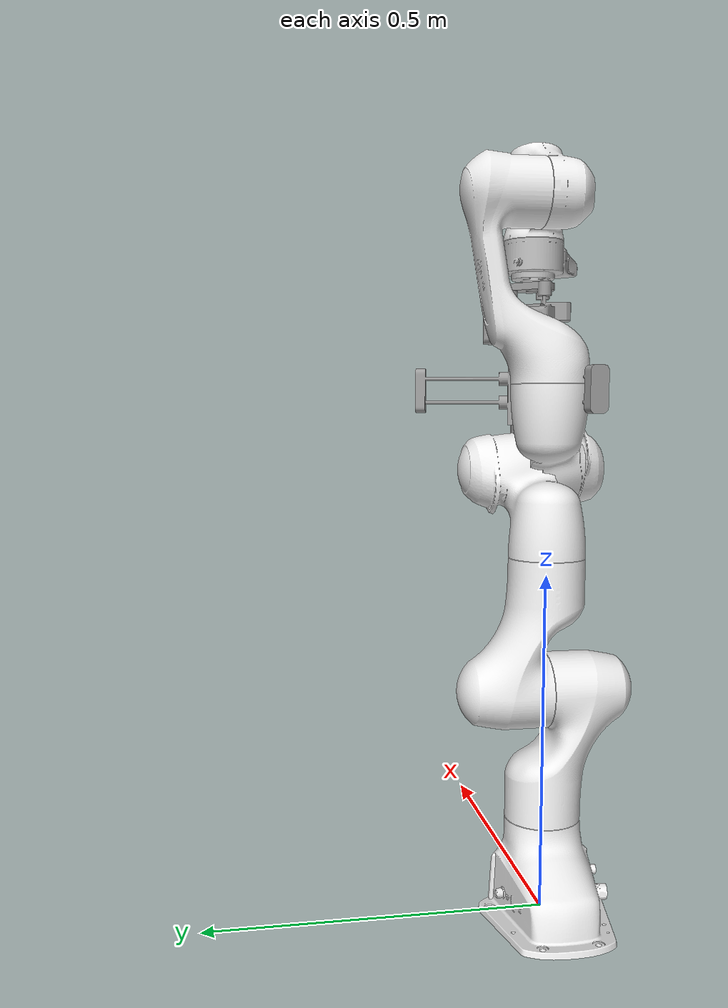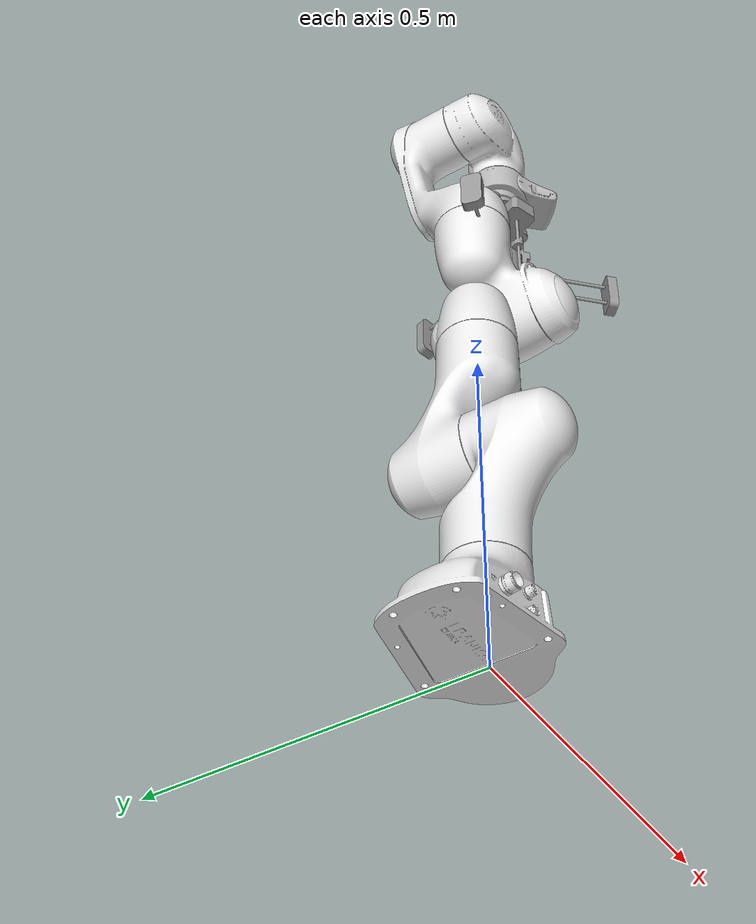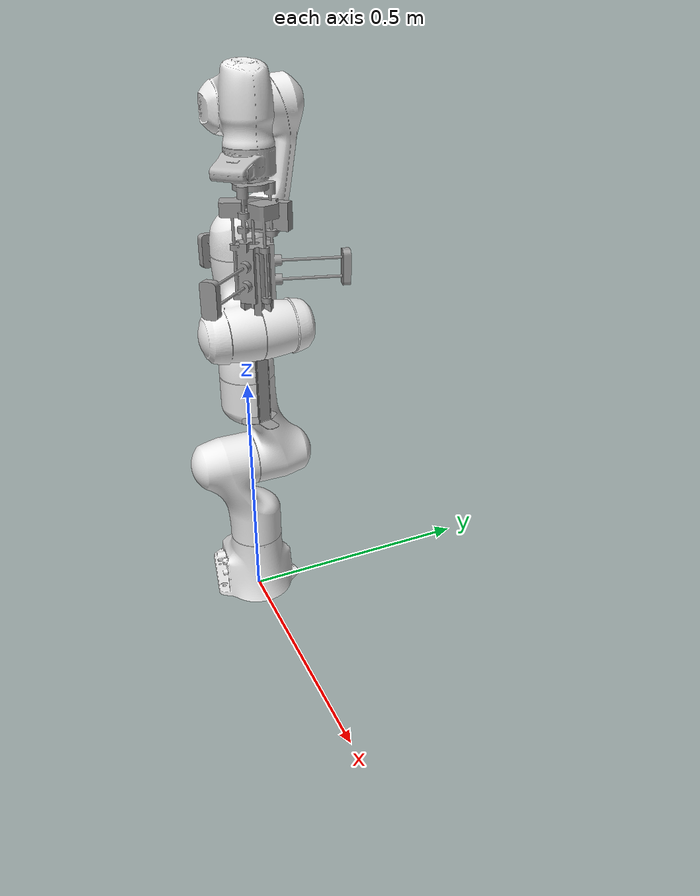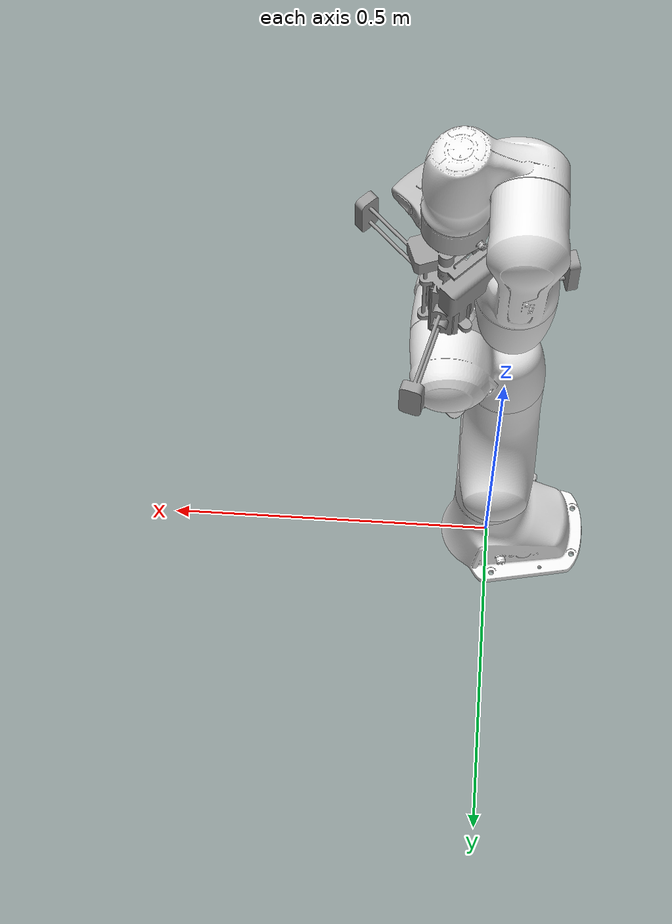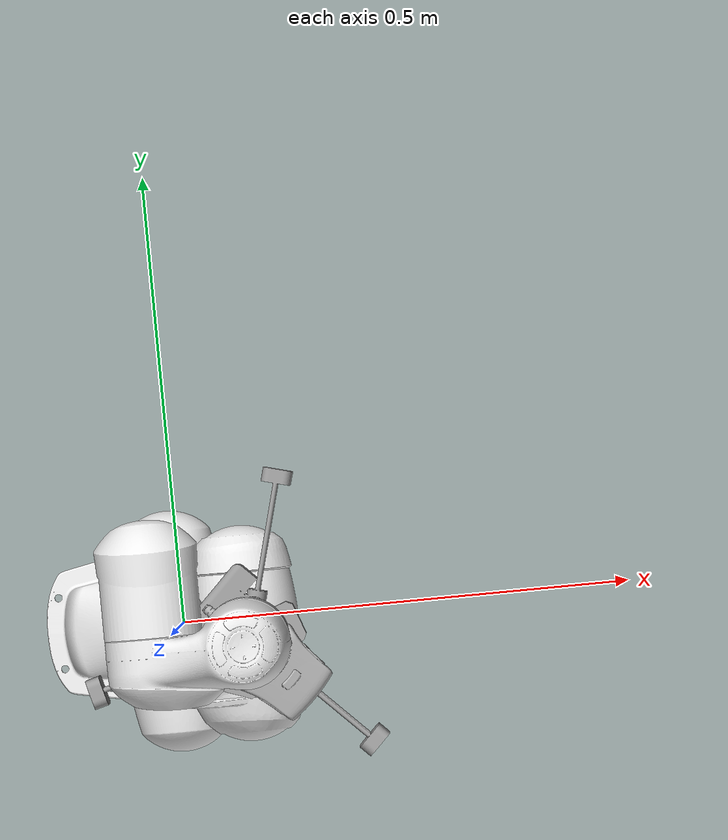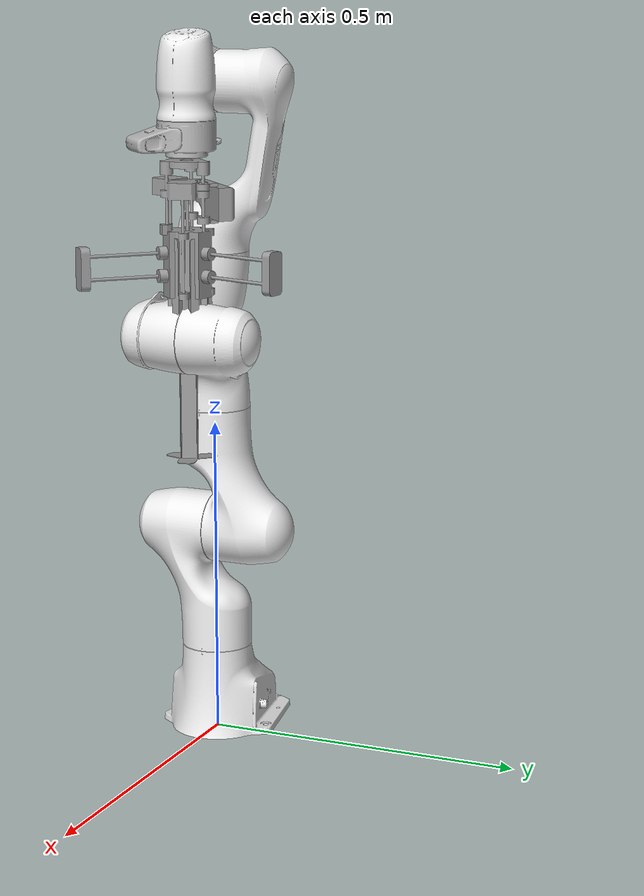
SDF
<sdf version='1.7'>
  <model name='panda_and_gripper'>
    <joint name='world_to_base' type='fixed'>
      <pose relative_to='__model__'>0 0 0 0 -0 0</pose>
      <parent>world</parent>
      <child>panda_link0</child>
    </joint>
    <link name='panda_link0'>
      <pose relative_to='world_to_base'>0 0 0 0 -0 0</pose>
      <inertial>
        <pose>0 0 0 0 -0 0</pose>
        <mass>3.06</mass>
        <inertia>
          <ixx>0.3</ixx>
          <ixy>0</ixy>
          <ixz>0</ixz>
          <iyy>0.3</iyy>
          <iyz>0</iyz>
          <izz>0.3</izz>
        </inertia>
      </inertial>
      <collision name='panda_link0_collision'>
        <pose>0 0 0 0 -0 0</pose>
        <geometry>
          <mesh>
            <scale>1 1 1</scale>
            <uri>model://gripper_description/meshes_panda/panda collision link0.stl</uri>
          </mesh>
        </geometry>
        <surface>
          <contact>
            <ode/>
          </contact>
          <friction>
            <ode>
              <mu>0.2</mu>
              <mu2>0.2</mu2>
            </ode>
          </friction>
        </surface>
      </collision>
      <visual name='panda_link0_visual'>
        <pose>0 0 0 0 -0 0</pose>
        <geometry>
          <mesh>
            <scale>1 1 1</scale>
            <uri>model://gripper_description/meshes_panda/panda visual link0.stl</uri>
          </mesh>
        </geometry>
        <material>
          <script>
            <name>Gazebo/White</name>
            <uri>file://media/materials/scripts/gazebo.material</uri>
          </script>
        </material>
      </visual>
    </link>
    <joint name='panda_joint1' type='revolute'>
      <pose relative_to='panda_link0'>0 0 0.333 0 -0 0</pose>
      <parent>panda_link0</parent>
      <child>panda_link1</child>
      <axis>
        <xyz>0 0 1</xyz>
        <limit>
          <lower>-2.8973</lower>
          <upper>2.8973</upper>
          <effort>87</effort>
          <velocity>2.175</velocity>
        </limit>
        <dynamics>
          <damping>1</damping>
          <friction>0.1</friction>
          <spring_reference>0</spring_reference>
          <spring_stiffness>0</spring_stiffness>
        </dynamics>
      </axis>
    </joint>
    <link name='panda_link1'>
      <pose relative_to='panda_joint1'>0 0 0 0 -0 0</pose>
      <inertial>
        <pose>0 0 0 0 -0 0</pose>
        <mass>2.34</mass>
        <inertia>
          <ixx>0.70337</ixx>
          <ixy>-0.000139</ixy>
          <ixz>0.006772</ixz>
          <iyy>0.70661</iyy>
          <iyz>0.019169</iyz>
          <izz>0.009117</izz>
        </inertia>
      </inertial>
      <collision name='panda_link1_collision'>
        <pose>0 0 0 0 -0 0</pose>
        <geometry>
          <mesh>
            <scale>1 1 1</scale>
            <uri>model://gripper_description/meshes_panda/panda collision link1.stl</uri>
          </mesh>
        </geometry>
        <surface>
          <contact>
            <ode/>
          </contact>
          <friction>
            <ode>
              <mu>0.2</mu>
              <mu2>0.2</mu2>
            </ode>
          </friction>
        </surface>
      </collision>
      <visual name='panda_link1_visual'>
        <pose>0 0 0 0 -0 0</pose>
        <geometry>
          <mesh>
            <scale>1 1 1</scale>
            <uri>model://gripper_description/meshes_panda/panda visual link1.stl</uri>
          </mesh>
        </geometry>
        <material>
          <script>
            <name>Gazebo/White</name>
            <uri>file://media/materials/scripts/gazebo.material</uri>
          </script>
        </material>
      </visual>
    </link>
    <joint name='panda_joint2' type='revolute'>
      <pose relative_to='panda_link1'>0 0 0 -1.5708 0 0</pose>
      <parent>panda_link1</parent>
      <child>panda_link2</child>
      <axis>
        <xyz>0 0 1</xyz>
        <limit>
          <lower>-1.7628</lower>
          <upper>1.7628</upper>
          <effort>87</effort>
          <velocity>2.175</velocity>
        </limit>
        <dynamics>
          <damping>1</damping>
          <friction>0.1</friction>
          <spring_reference>0</spring_reference>
          <spring_stiffness>0</spring_stiffness>
        </dynamics>
      </axis>
    </joint>
    <link name='panda_link2'>
      <pose relative_to='panda_joint2'>0 0 0 0 -0 0</pose>
      <inertial>
        <pose>0 0 0 0 -0 0</pose>
        <mass>2.36</mass>
        <inertia>
          <ixx>0.007962</ixx>
          <ixy>-0.003925</ixy>
          <ixz>0.010254</ixz>
          <iyy>0.02811</iyy>
          <iyz>0.000704</iyz>
          <izz>0.025995</izz>
        </inertia>
      </inertial>
      <collision name='panda_link2_collision'>
        <pose>0 0 0 0 -0 0</pose>
        <geometry>
          <mesh>
            <scale>1 1 1</scale>
            <uri>model://gripper_description/meshes_panda/panda collision link2.stl</uri>
          </mesh>
        </geometry>
        <surface>
          <contact>
            <ode/>
          </contact>
          <friction>
            <ode>
              <mu>0.2</mu>
              <mu2>0.2</mu2>
            </ode>
          </friction>
        </surface>
      </collision>
      <visual name='panda_link2_visual'>
        <pose>0 0 0 0 -0 0</pose>
        <geometry>
          <mesh>
            <scale>1 1 1</scale>
            <uri>model://gripper_description/meshes_panda/panda visual link2.stl</uri>
          </mesh>
        </geometry>
        <material>
          <script>
            <name>Gazebo/White</name>
            <uri>file://media/materials/scripts/gazebo.material</uri>
          </script>
        </material>
      </visual>
    </link>
    <joint name='panda_joint3' type='revolute'>
      <pose relative_to='panda_link2'>0 -0.316 0 1.5708 -0 0</pose>
      <parent>panda_link2</parent>
      <child>panda_link3</child>
      <axis>
        <xyz>0 0 1</xyz>
        <limit>
          <lower>-2.8973</lower>
          <upper>2.8973</upper>
          <effort>87</effort>
          <velocity>2.175</velocity>
        </limit>
        <dynamics>
          <damping>1</damping>
          <friction>0.1</friction>
          <spring_reference>0</spring_reference>
          <spring_stiffness>0</spring_stiffness>
        </dynamics>
      </axis>
    </joint>
    <link name='panda_link3'>
      <pose relative_to='panda_joint3'>0 0 0 0 -0 0</pose>
      <inertial>
        <pose>0 0 0 0 -0 0</pose>
        <mass>2.38</mass>
        <inertia>
          <ixx>0.037242</ixx>
          <ixy>-0.004761</ixy>
          <ixz>-0.011396</ixz>
          <iyy>0.036155</iyy>
          <iyz>-0.012805</iyz>
          <izz>0.01083</izz>
        </inertia>
      </inertial>
      <collision name='panda_link3_collision'>
        <pose>0 0 0 0 -0 0</pose>
        <geometry>
          <mesh>
            <scale>1 1 1</scale>
            <uri>model://gripper_description/meshes_panda/panda collision link3.stl</uri>
          </mesh>
        </geometry>
        <surface>
          <contact>
            <ode/>
          </contact>
          <friction>
            <ode>
              <mu>0.2</mu>
              <mu2>0.2</mu2>
            </ode>
          </friction>
        </surface>
      </collision>
      <visual name='panda_link3_visual'>
        <pose>0 0 0 0 -0 0</pose>
        <geometry>
          <mesh>
            <scale>1 1 1</scale>
            <uri>model://gripper_description/meshes_panda/panda visual link3.stl</uri>
          </mesh>
        </geometry>
        <material>
          <script>
            <name>Gazebo/White</name>
            <uri>file://media/materials/scripts/gazebo.material</uri>
          </script>
        </material>
      </visual>
    </link>
    <joint name='panda_joint4' type='revolute'>
      <pose relative_to='panda_link3'>0.0825 0 0 1.5708 -0 0</pose>
      <parent>panda_link3</parent>
      <child>panda_link4</child>
      <axis>
        <xyz>0 0 1</xyz>
        <limit>
          <lower>-3.0718</lower>
          <upper>-0.0698</upper>
          <effort>87</effort>
          <velocity>2.175</velocity>
        </limit>
        <dynamics>
          <damping>1</damping>
          <friction>0.1</friction>
          <spring_reference>0</spring_reference>
          <spring_stiffness>0</spring_stiffness>
        </dynamics>
      </axis>
    </joint>
    <link name='panda_link4'>
      <pose relative_to='panda_joint4'>0 0 0 0 -0 0</pose>
      <inertial>
        <pose>0 0 0 0 -0 0</pose>
        <mass>2.43</mass>
        <inertia>
          <ixx>0.025853</ixx>
          <ixy>0.007796</ixy>
          <ixz>-0.001332</ixz>
          <iyy>0.019552</iyy>
          <iyz>0.008641</iyz>
          <izz>0.028323</izz>
        </inertia>
      </inertial>
      <collision name='panda_link4_collision'>
        <pose>0 0 0 0 -0 0</pose>
        <geometry>
          <mesh>
            <scale>1 1 1</scale>
            <uri>model://gripper_description/meshes_panda/panda collision link4.stl</uri>
          </mesh>
        </geometry>
        <surface>
          <contact>
            <ode/>
          </contact>
          <friction>
            <ode>
              <mu>0.2</mu>
              <mu2>0.2</mu2>
            </ode>
          </friction>
        </surface>
      </collision>
      <visual name='panda_link4_visual'>
        <pose>0 0 0 0 -0 0</pose>
        <geometry>
          <mesh>
            <scale>1 1 1</scale>
            <uri>model://gripper_description/meshes_panda/panda visual link4.stl</uri>
          </mesh>
        </geometry>
        <material>
          <script>
            <name>Gazebo/White</name>
            <uri>file://media/materials/scripts/gazebo.material</uri>
          </script>
        </material>
      </visual>
    </link>
    <joint name='panda_joint5' type='revolute'>
      <pose relative_to='panda_link4'>-0.0825 0.384 0 -1.5708 0 0</pose>
      <parent>panda_link4</parent>
      <child>panda_link5</child>
      <axis>
        <xyz>0 0 1</xyz>
        <limit>
          <lower>-2.8973</lower>
          <upper>2.8973</upper>
          <effort>12</effort>
          <velocity>2.61</velocity>
        </limit>
        <dynamics>
          <damping>1</damping>
          <friction>0.1</friction>
          <spring_reference>0</spring_reference>
          <spring_stiffness>0</spring_stiffness>
        </dynamics>
      </axis>
    </joint>
    <link name='panda_link5'>
      <pose relative_to='panda_joint5'>0 0 0 0 -0 0</pose>
      <inertial>
        <pose>0 0 0 0 -0 0</pose>
        <mass>3.5</mass>
        <inertia>
          <ixx>0.035549</ixx>
          <ixy>-0.002117</ixy>
          <ixz>-0.004037</ixz>
          <iyy>0.029474</iyy>
          <iyz>0.000229</iyz>
          <izz>0.008627</izz>
        </inertia>
      </inertial>
      <collision name='panda_link5_collision'>
        <pose>0 0 0 0 -0 0</pose>
        <geometry>
          <mesh>
            <scale>1 1 1</scale>
            <uri>model://gripper_description/meshes_panda/panda collision link5.stl</uri>
          </mesh>
        </geometry>
        <surface>
          <contact>
            <ode/>
          </contact>
          <friction>
            <ode>
              <mu>0.2</mu>
              <mu2>0.2</mu2>
            </ode>
          </friction>
        </surface>
      </collision>
      <visual name='panda_link5_visual'>
        <pose>0 0 0 0 -0 0</pose>
        <geometry>
          <mesh>
            <scale>1 1 1</scale>
            <uri>model://gripper_description/meshes_panda/panda visual link5.stl</uri>
          </mesh>
        </geometry>
        <material>
          <script>
            <name>Gazebo/White</name>
            <uri>file://media/materials/scripts/gazebo.material</uri>
          </script>
        </material>
      </visual>
    </link>
    <joint name='panda_joint6' type='revolute'>
      <pose relative_to='panda_link5'>0 0 0 1.5708 -0 0</pose>
      <parent>panda_link5</parent>
      <child>panda_link6</child>
      <axis>
        <xyz>0 0 1</xyz>
        <limit>
          <lower>-0.0175</lower>
          <upper>3.7525</upper>
          <effort>12</effort>
          <velocity>2.61</velocity>
        </limit>
        <dynamics>
          <damping>1</damping>
          <friction>0.1</friction>
          <spring_reference>0</spring_reference>
          <spring_stiffness>0</spring_stiffness>
        </dynamics>
      </axis>
    </joint>
    <link name='panda_link6'>
      <pose relative_to='panda_joint6'>0 0 0 0 -0 0</pose>
      <inertial>
        <pose>0 0 0 0 -0 0</pose>
        <mass>1.47</mass>
        <inertia>
          <ixx>0.001964</ixx>
          <ixy>0.000109</ixy>
          <ixz>-0.001158</ixz>
          <iyy>0.004354</iyy>
          <iyz>0.000341</iyz>
          <izz>0.005433</izz>
        </inertia>
      </inertial>
      <collision name='panda_link6_collision'>
        <pose>0 0 0 0 -0 0</pose>
        <geometry>
          <mesh>
            <scale>1 1 1</scale>
            <uri>model://gripper_description/meshes_panda/panda collision link6.stl</uri>
          </mesh>
        </geometry>
        <surface>
          <contact>
            <ode/>
          </contact>
          <friction>
            <ode>
              <mu>0.2</mu>
              <mu2>0.2</mu2>
            </ode>
          </friction>
        </surface>
      </collision>
      <visual name='panda_link6_visual'>
        <pose>0 0 0 0 -0 0</pose>
        <geometry>
          <mesh>
            <scale>1 1 1</scale>
            <uri>model://gripper_description/meshes_panda/panda visual link6.stl</uri>
          </mesh>
        </geometry>
        <material>
          <script>
            <name>Gazebo/White</name>
            <uri>file://media/materials/scripts/gazebo.material</uri>
          </script>
        </material>
      </visual>
    </link>
    <joint name='panda_joint7' type='revolute'>
      <pose relative_to='panda_link6'>0.088 0 0 1.5708 -0 0</pose>
      <parent>panda_link6</parent>
      <child>panda_link7</child>
      <axis>
        <xyz>0 0 1</xyz>
        <limit>
          <lower>-2.8973</lower>
          <upper>2.8973</upper>
          <effort>12</effort>
          <velocity>2.61</velocity>
        </limit>
        <dynamics>
          <damping>1</damping>
          <friction>0.1</friction>
          <spring_reference>0</spring_reference>
          <spring_stiffness>0</spring_stiffness>
        </dynamics>
      </axis>
    </joint>
    <link name='panda_link7'>
      <pose relative_to='panda_joint7'>0 0 0 0 -0 0</pose>
      <inertial>
        <pose>0 0 0.211538 0 -0 0</pose>
        <mass>1.95</mass>
        <inertia>
          <ixx>0.0488062</ixx>
          <ixy>-0.000363</ixy>
          <ixz>-0.00110005</ixz>
          <iyy>0.0463226</iyy>
          <iyz>-0.000665297</iyz>
          <izz>0.010045</izz>
        </inertia>
      </inertial>
      <collision name='panda_link7_collision'>
        <pose>0 0 0 0 -0 0</pose>
        <geometry>
          <mesh>
            <scale>1 1 1</scale>
            <uri>model://gripper_description/meshes_panda/panda collision link7.stl</uri>
          </mesh>
        </geometry>
      </collision>
      <collision name='panda_link7_fixed_joint_lump__gripper_base_link_collision_1'>
        <pose>0 0 0.25 0 0 -0.785398</pose>
        <geometry>
          <cylinder>
            <length>0.1</length>
            <radius>0.03</radius>
          </cylinder>
        </geometry>
        <surface>
          <contact>
            <ode/>
          </contact>
          <friction>
            <ode>
              <mu>0.2</mu>
              <mu2>0.2</mu2>
            </ode>
          </friction>
        </surface>
      </collision>
      <visual name='panda_link7_visual'>
        <pose>0 0 0 0 -0 0</pose>
        <geometry>
          <mesh>
            <scale>1 1 1</scale>
            <uri>model://gripper_description/meshes_panda/panda visual link7.stl</uri>
          </mesh>
        </geometry>
      </visual>
      <visual name='panda_link7_fixed_joint_lump__gripper_base_link_visual_1'>
        <pose>0 0 0.25 0 0 -0.785398</pose>
        <geometry>
          <mesh>
            <scale>1 1 1</scale>
            <uri>model://gripper_description/meshes/main body visual.STL</uri>
          </mesh>
        </geometry>
        <material>
          <script>
            <name>Gazebo/Grey</name>
            <uri>file://media/materials/scripts/gazebo.material</uri>
          </script>
        </material>
      </visual>
    </link>
    <joint name='finger_1_prismatic_joint' type='prismatic'>
      <pose relative_to='panda_link7'>0 0 0.25 -0.785398 -1.5708 0</pose>
      <parent>panda_link7</parent>
      <child>finger_1_intermediate</child>
      <axis>
        <xyz>0 1 0</xyz>
        <limit>
          <lower>0.049</lower>
          <upper>0.134</upper>
          <effort>40</effort>
          <velocity>0.015</velocity>
        </limit>
        <dynamics>
          <damping>1</damping>
          <friction>0</friction>
          <spring_reference>0</spring_reference>
          <spring_stiffness>0</spring_stiffness>
        </dynamics>
      </axis>
    </joint>
    <link name='finger_1_intermediate'>
      <pose relative_to='finger_1_prismatic_joint'>0 0 0 0 -0 0</pose>
      <inertial>
        <pose>0 0 0 0 -0 0</pose>
        <mass>0.1</mass>
        <inertia>
          <ixx>5.559e-05</ixx>
          <ixy>-4.723e-05</ixy>
          <ixz>1.16e-06</ixz>
          <iyy>0.00014636</iyy>
          <iyz>1e-06</iyz>
          <izz>0.00015418</izz>
        </inertia>
      </inertial>
      <collision name='finger_1_intermediate_collision'>
        <pose>0 0 0 0 -0 0</pose>
        <geometry>
          <mesh>
            <scale>1 1 1</scale>
            <uri>model://gripper_description/meshes/nut collision.STL</uri>
          </mesh>
        </geometry>
        <surface>
          <contact>
            <ode/>
          </contact>
          <friction>
            <ode>
              <mu>0.2</mu>
              <mu2>0.2</mu2>
            </ode>
          </friction>
        </surface>
      </collision>
      <visual name='finger_1_intermediate_visual'>
        <pose>0 0 0 0 -0 0</pose>
        <geometry>
          <mesh>
            <scale>1 1 1</scale>
            <uri>model://gripper_description/meshes/nut visual.STL</uri>
          </mesh>
        </geometry>
        <material>
          <script>
            <name>Gazebo/Grey</name>
            <uri>file://media/materials/scripts/gazebo.material</uri>
          </script>
        </material>
      </visual>
    </link>
    <joint name='finger_1_revolute_joint' type='revolute'>
      <pose relative_to='finger_1_intermediate'>0 0 0 0 -0 0</pose>
      <parent>finger_1_intermediate</parent>
      <child>finger_1</child>
      <axis>
        <xyz>0 0 1</xyz>
        <limit>
          <lower>-0.7</lower>
          <upper>0.7</upper>
          <effort>40</effort>
          <velocity>0.1</velocity>
        </limit>
        <dynamics>
          <damping>1</damping>
          <friction>0</friction>
          <spring_reference>0</spring_reference>
          <spring_stiffness>0</spring_stiffness>
        </dynamics>
      </axis>
    </joint>
    <link name='finger_1'>
      <pose relative_to='finger_1_revolute_joint'>0 0 0 0 -0 0</pose>
      <inertial>
        <pose>0 0 0 0 -0 0</pose>
        <mass>0.2</mass>
        <inertia>
          <ixx>0.00028344</ixx>
          <ixy>-0.00056723</ixy>
          <ixz>-6.59e-06</ixz>
          <iyy>0.00138</iyy>
          <iyz>2.4e-06</iyz>
          <izz>0.0016</izz>
        </inertia>
      </inertial>
      <collision name='finger_1_collision'>
        <pose>0 0 0 0 -0 0</pose>
        <geometry>
          <mesh>
            <scale>1 1 1</scale>
            <uri>model://gripper_description/meshes/finger platform collision.STL</uri>
          </mesh>
        </geometry>
        <surface>
          <contact>
            <ode/>
          </contact>
          <friction>
            <ode>
              <mu>0.2</mu>
              <mu2>0.2</mu2>
            </ode>
          </friction>
        </surface>
      </collision>
      <visual name='finger_1_visual'>
        <pose>0 0 0 0 -0 0</pose>
        <geometry>
          <mesh>
            <scale>1 1 1</scale>
            <uri>model://gripper_description/meshes/finger platform visual.STL</uri>
          </mesh>
        </geometry>
        <material>
          <script>
            <name>Gazebo/Grey</name>
            <uri>file://media/materials/scripts/gazebo.material</uri>
          </script>
        </material>
      </visual>
    </link>
    <joint name='finger_2_prismatic_joint' type='prismatic'>
      <pose relative_to='panda_link7'>0 0 0.25 -2.87979 -1.5708 0</pose>
      <parent>panda_link7</parent>
      <child>finger_2_intermediate</child>
      <axis>
        <xyz>0 1 0</xyz>
        <limit>
          <lower>0.049</lower>
          <upper>0.134</upper>
          <effort>40</effort>
          <velocity>0.015</velocity>
        </limit>
        <dynamics>
          <damping>1</damping>
          <friction>0</friction>
          <spring_reference>0</spring_reference>
          <spring_stiffness>0</spring_stiffness>
        </dynamics>
      </axis>
    </joint>
    <link name='finger_2_intermediate'>
      <pose relative_to='finger_2_prismatic_joint'>0 0 0 0 -0 0</pose>
      <inertial>
        <pose>0 0 0 0 -0 0</pose>
        <mass>0.1</mass>
        <inertia>
          <ixx>5.559e-05</ixx>
          <ixy>-4.723e-05</ixy>
          <ixz>1.16e-06</ixz>
          <iyy>0.00014636</iyy>
          <iyz>1e-06</iyz>
          <izz>0.00015418</izz>
        </inertia>
      </inertial>
      <collision name='finger_2_intermediate_collision'>
        <pose>0 0 0 0 -0 0</pose>
        <geometry>
          <mesh>
            <scale>1 1 1</scale>
            <uri>model://gripper_description/meshes/nut collision.STL</uri>
          </mesh>
        </geometry>
        <surface>
          <contact>
            <ode/>
          </contact>
          <friction>
            <ode>
              <mu>0.2</mu>
              <mu2>0.2</mu2>
            </ode>
          </friction>
        </surface>
      </collision>
      <visual name='finger_2_intermediate_visual'>
        <pose>0 0 0 0 -0 0</pose>
        <geometry>
          <mesh>
            <scale>1 1 1</scale>
            <uri>model://gripper_description/meshes/nut visual.STL</uri>
          </mesh>
        </geometry>
        <material>
          <script>
            <name>Gazebo/Grey</name>
            <uri>file://media/materials/scripts/gazebo.material</uri>
          </script>
        </material>
      </visual>
    </link>
    <joint name='finger_2_revolute_joint' type='revolute'>
      <pose relative_to='finger_2_intermediate'>0 0 0 0 -0 0</pose>
      <parent>finger_2_intermediate</parent>
      <child>finger_2</child>
      <axis>
        <xyz>0 0 1</xyz>
        <limit>
          <lower>-0.7</lower>
          <upper>0.7</upper>
          <effort>40</effort>
          <velocity>0.1</velocity>
        </limit>
        <dynamics>
          <damping>1</damping>
          <friction>0</friction>
          <spring_reference>0</spring_reference>
          <spring_stiffness>0</spring_stiffness>
        </dynamics>
      </axis>
    </joint>
    <link name='finger_2'>
      <pose relative_to='finger_2_revolute_joint'>0 0 0 0 -0 0</pose>
      <inertial>
        <pose>0 0 0 0 -0 0</pose>
        <mass>0.2</mass>
        <inertia>
          <ixx>0.00028344</ixx>
          <ixy>-0.00056723</ixy>
          <ixz>-6.59e-06</ixz>
          <iyy>0.00138</iyy>
          <iyz>2.4e-06</iyz>
          <izz>0.0016</izz>
        </inertia>
      </inertial>
      <collision name='finger_2_collision'>
        <pose>0 0 0 0 -0 0</pose>
        <geometry>
          <mesh>
            <scale>1 1 1</scale>
            <uri>model://gripper_description/meshes/finger platform collision.STL</uri>
          </mesh>
        </geometry>
        <surface>
          <contact>
            <ode/>
          </contact>
          <friction>
            <ode>
              <mu>0.2</mu>
              <mu2>0.2</mu2>
            </ode>
          </friction>
        </surface>
      </collision>
      <visual name='finger_2_visual'>
        <pose>0 0 0 0 -0 0</pose>
        <geometry>
          <mesh>
            <scale>1 1 1</scale>
            <uri>model://gripper_description/meshes/finger platform visual.STL</uri>
          </mesh>
        </geometry>
        <material>
          <script>
            <name>Gazebo/Grey</name>
            <uri>file://media/materials/scripts/gazebo.material</uri>
          </script>
        </material>
      </visual>
    </link>
    <joint name='finger_3_prismatic_joint' type='prismatic'>
      <pose relative_to='panda_link7'>0 0 0.25 1.309 -1.5708 0</pose>
      <parent>panda_link7</parent>
      <child>finger_3_intermediate</child>
      <axis>
        <xyz>0 1 0</xyz>
        <limit>
          <lower>0.049</lower>
          <upper>0.134</upper>
          <effort>40</effort>
          <velocity>0.015</velocity>
        </limit>
        <dynamics>
          <damping>1</damping>
          <friction>0</friction>
          <spring_reference>0</spring_reference>
          <spring_stiffness>0</spring_stiffness>
        </dynamics>
      </axis>
    </joint>
    <link name='finger_3_intermediate'>
      <pose relative_to='finger_3_prismatic_joint'>0 0 0 0 -0 0</pose>
      <inertial>
        <pose>0 0 0 0 -0 0</pose>
        <mass>0.1</mass>
        <inertia>
          <ixx>5.559e-05</ixx>
          <ixy>-4.723e-05</ixy>
          <ixz>1.16e-06</ixz>
          <iyy>0.00014636</iyy>
          <iyz>1e-06</iyz>
          <izz>0.00015418</izz>
        </inertia>
      </inertial>
      <collision name='finger_3_intermediate_collision'>
        <pose>0 0 0 0 -0 0</pose>
        <geometry>
          <mesh>
            <scale>1 1 1</scale>
            <uri>model://gripper_description/meshes/nut collision.STL</uri>
          </mesh>
        </geometry>
        <surface>
          <contact>
            <ode/>
          </contact>
          <friction>
            <ode>
              <mu>0.2</mu>
              <mu2>0.2</mu2>
            </ode>
          </friction>
        </surface>
      </collision>
      <visual name='finger_3_intermediate_visual'>
        <pose>0 0 0 0 -0 0</pose>
        <geometry>
          <mesh>
            <scale>1 1 1</scale>
            <uri>model://gripper_description/meshes/nut visual.STL</uri>
          </mesh>
        </geometry>
        <material>
          <script>
            <name>Gazebo/Grey</name>
            <uri>file://media/materials/scripts/gazebo.material</uri>
          </script>
        </material>
      </visual>
    </link>
    <joint name='finger_3_revolute_joint' type='revolute'>
      <pose relative_to='finger_3_intermediate'>0 0 0 0 -0 0</pose>
      <parent>finger_3_intermediate</parent>
      <child>finger_3</child>
      <axis>
        <xyz>0 0 1</xyz>
        <limit>
          <lower>-0.7</lower>
          <upper>0.7</upper>
          <effort>40</effort>
          <velocity>0.1</velocity>
        </limit>
        <dynamics>
          <damping>1</damping>
          <friction>0</friction>
          <spring_reference>0</spring_reference>
          <spring_stiffness>0</spring_stiffness>
        </dynamics>
      </axis>
    </joint>
    <link name='finger_3'>
      <pose relative_to='finger_3_revolute_joint'>0 0 0 0 -0 0</pose>
      <inertial>
        <pose>0 0 0 0 -0 0</pose>
        <mass>0.2</mass>
        <inertia>
          <ixx>0.00028344</ixx>
          <ixy>-0.00056723</ixy>
          <ixz>-6.59e-06</ixz>
          <iyy>0.00138</iyy>
          <iyz>2.4e-06</iyz>
          <izz>0.0016</izz>
        </inertia>
      </inertial>
      <collision name='finger_3_collision'>
        <pose>0 0 0 0 -0 0</pose>
        <geometry>
          <mesh>
            <scale>1 1 1</scale>
            <uri>model://gripper_description/meshes/finger platform collision.STL</uri>
          </mesh>
        </geometry>
        <surface>
          <contact>
            <ode/>
          </contact>
          <friction>
            <ode>
              <mu>0.2</mu>
              <mu2>0.2</mu2>
            </ode>
          </friction>
        </surface>
      </collision>
      <visual name='finger_3_visual'>
        <pose>0 0 0 0 -0 0</pose>
        <geometry>
          <mesh>
            <scale>1 1 1</scale>
            <uri>model://gripper_description/meshes/finger platform visual.STL</uri>
          </mesh>
        </geometry>
        <material>
          <script>
            <name>Gazebo/Grey</name>
            <uri>file://media/materials/scripts/gazebo.material</uri>
          </script>
        </material>
      </visual>
    </link>
    <joint name='palm_prismatic_joint' type='prismatic'>
      <pose relative_to='panda_link7'>0 0 0.25 -0.785398 -1.5708 0</pose>
      <parent>panda_link7</parent>
      <child>palm</child>
      <axis>
        <xyz>1 0 0</xyz>
        <limit>
          <lower>0</lower>
          <upper>0.165</upper>
          <effort>40</effort>
          <velocity>0.036</velocity>
        </limit>
        <dynamics>
          <damping>1</damping>
          <friction>0</friction>
          <spring_reference>0</spring_reference>
          <spring_stiffness>0</spring_stiffness>
        </dynamics>
      </axis>
    </joint>
    <link name='palm'>
      <pose relative_to='palm_prismatic_joint'>0 0 0 0 -0 0</pose>
      <inertial>
        <pose>0 0 0 0 -0 0</pose>
        <mass>0.05</mass>
        <inertia>
          <ixx>1e-05</ixx>
          <ixy>0</ixy>
          <ixz>0</ixz>
          <iyy>1e-05</iyy>
          <iyz>0</iyz>
          <izz>1e-05</izz>
        </inertia>
      </inertial>
      <collision name='palm_collision'>
        <pose>0 0 0 0 -0 0</pose>
        <geometry>
          <mesh>
            <scale>1 1 1</scale>
            <uri>model://gripper_description/meshes/palm collision.STL</uri>
          </mesh>
        </geometry>
        <surface>
          <contact>
            <ode/>
          </contact>
          <friction>
            <ode>
              <mu>0.2</mu>
              <mu2>0.2</mu2>
            </ode>
          </friction>
        </surface>
      </collision>
      <visual name='palm_visual'>
        <pose>0 0 0 0 -0 0</pose>
        <geometry>
          <mesh>
            <scale>1 1 1</scale>
            <uri>model://gripper_description/meshes/palm visual.STL</uri>
          </mesh>
        </geometry>
        <material>
          <script>
            <name>Gazebo/Grey</name>
            <uri>file://media/materials/scripts/gazebo.material</uri>
          </script>
        </material>
      </visual>
    </link>
    <plugin name='gazebo_ros_control' filename='libgazebo_ros_control.so'/>
    <plugin name='reset_joints_plugin' filename='libreset_joints_plugin.so'/>
    <frame name='panda_joint8' attached_to='panda_link7'>
      <pose>0 0 0.107 0 -0 0</pose>
    </frame>
    <frame name='panda_link8' attached_to='panda_joint8'/>
    <frame name='panda_to_eef_base_joint' attached_to='panda_link7'>
      <pose>0 0 0.25 0 0 -0.785398</pose>
    </frame>
    <frame name='gripper_base_link' attached_to='panda_to_eef_base_joint'/>
  </model>
</sdf>
